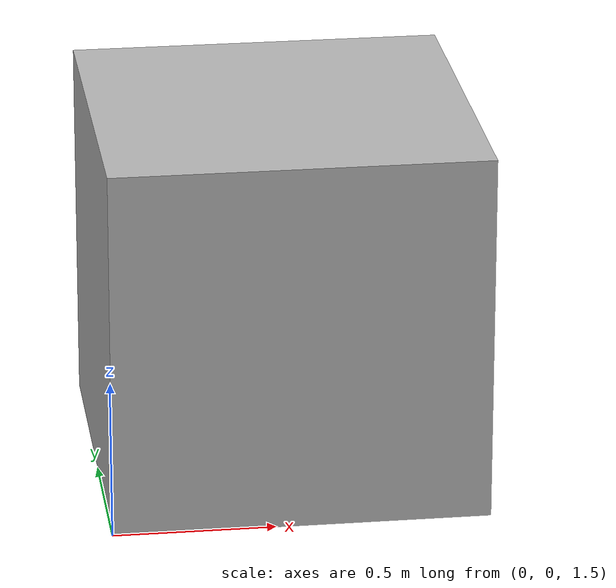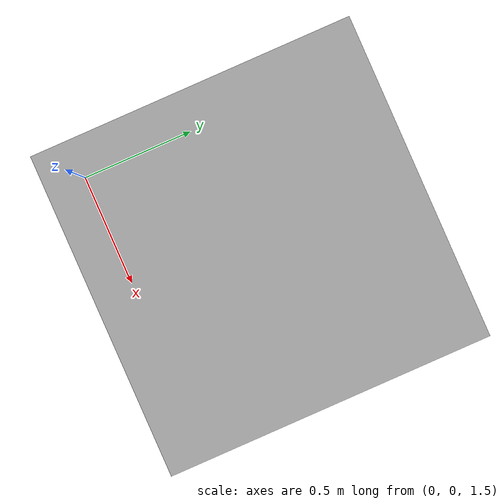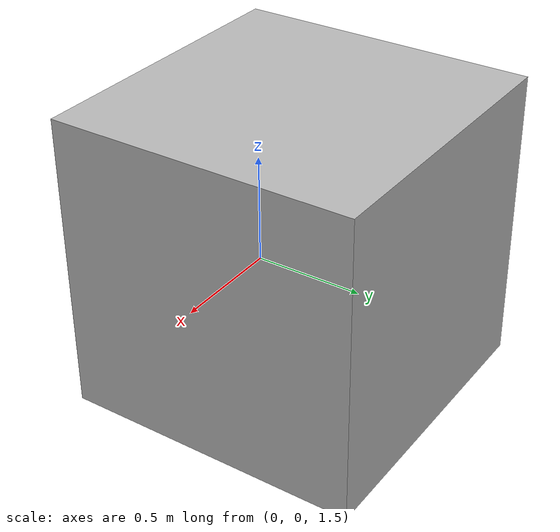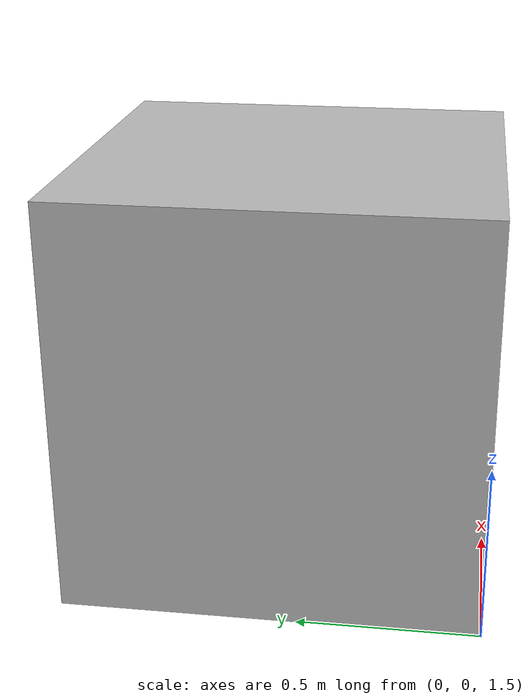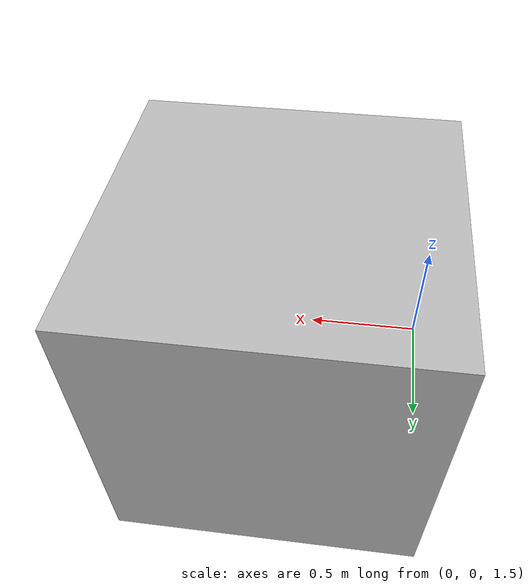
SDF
<?xml version="1.0" ?>
<sdf version="1.5">
  <world name="my_world">
    <include> <!-- Add in a light source -->
      <uri>model://sun</uri>
    </include>
    <include> <!-- Add your custom model -->
      <uri>model://concrete003</uri>
      <name>concrete_box</name>
      <pose>0 0 1.5 0 0 0</pose>
    </include>
  </world>
</sdf>

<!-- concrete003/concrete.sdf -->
<sdf version="1.5">
  <model name="concrete_box">
    <static>true</static>
    <link name="box_link">
        <collision name="box_collision">
         <geometry>
            <box>
                <size>1.70 0.51 0.55</size>
            </box>
        </geometry>
      </collision>

      <visual name="box_mesh">
        <cast_shadows>true</cast_shadows>
        <geometry>
            <mesh>
                <uri>model://concrete003/meshes/model.dae</uri>
            </mesh>
        </geometry>
      </visual>
    </link>
  </model>
</sdf>
